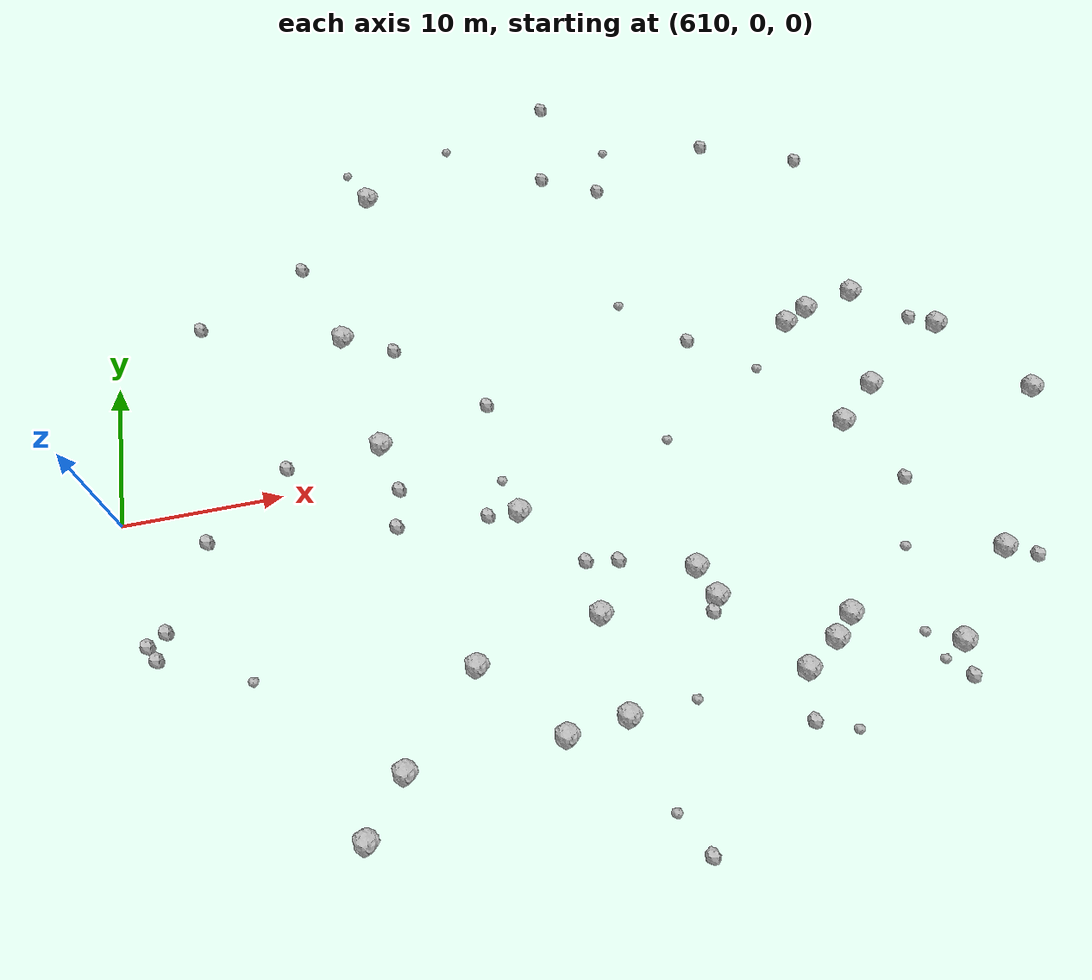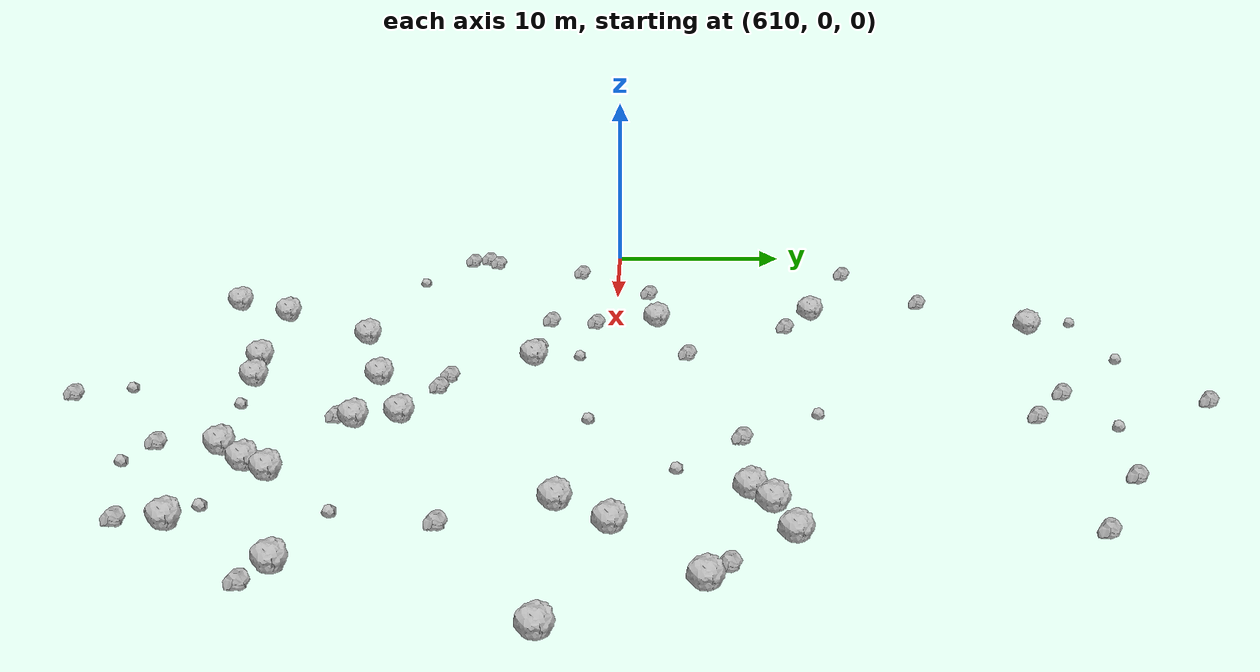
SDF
<sdf version="1.6">
 <world name="default">
  <include><uri>model://sun</uri></include>
  <model name="rock1_16_3">
   <include><uri>model://rock1</uri><pose>651.3869669971563 -15.904340754276376 0.5 0 0 0</pose></include>
  </model>
  <model name="rock1_16_4">
   <include><uri>model://rock1</uri><pose>658.9859748628533 0.2166233963697941 0.5 0 0 0</pose></include>
  </model>
  <model name="rock1_16_5">
   <include><uri>model://rock1</uri><pose>630.3030164210398 -13.322378249344503 0.5 0 0 0</pose></include>
  </model>
  <model name="rock1_16_6">
   <include><uri>model://rock1</uri><pose>659.9668831756378 7.565651626871251 0.5 0 0 0</pose></include>
  </model>
  <model name="rock1_16_7">
   <include><uri>model://rock1</uri><pose>634.4733712951677 -4.158661996774281 0.5 0 0 0</pose></include>
  </model>
  <model name="rock1_16_8">
   <include><uri>model://rock1</uri><pose>625.0108060308621 10.885701443657574 0.5 0 0 0</pose></include>
  </model>
  <model name="rock1_16_9">
   <include><uri>model://rock1</uri><pose>622.8929606862985 -21.683939861929247 0.5 0 0 0</pose></include>
  </model>
  <model name="rock1_16_10">
   <include><uri>model://rock1</uri><pose>626.5610812881131 2.240541346712213 0.5 0 0 0</pose></include>
  </model>
  <model name="rock1_16_11">
   <include><uri>model://rock1</uri><pose>656.3300939028464 -2.080367268525464 0.5 0 0 0</pose></include>
  </model>
  <model name="rock1_16_12">
   <include><uri>model://rock1</uri><pose>638.0533977929462 -11.694028753525252 0.5 0 0 0</pose></include>
  </model>
  <model name="rock1_16_13">
   <include><uri>model://rock1</uri><pose>669.3321926747362 -2.1772900887066626 0.5 0 0 0</pose></include>
  </model>
  <model name="rock1_16_14">
   <include><uri>model://rock1</uri><pose>649.2065541642347 -17.35006303423761 0.5 0 0 0</pose></include>
  </model>
  <model name="rock1_16_15">
   <include><uri>model://rock1</uri><pose>664.8841675011055 3.882026779201148 0.5 0 0 0</pose></include>
  </model>
  <model name="rock1_16_16">
   <include><uri>model://rock1</uri><pose>658.6869297960383 -17.564571363133663 0.5 0 0 0</pose></include>
  </model>
  <model name="rock1_16_17">
   <include><uri>model://rock1</uri><pose>638.3636973914404 -17.924047016844742 0.5 0 0 0</pose></include>
  </model>
  <model name="rock1_16_18">
   <include><uri>model://rock1</uri><pose>625.4231962561316 -18.4804135502133 0.5 0 0 0</pose></include>
  </model>
  <model name="rock1_16_19">
   <include><uri>model://rock1</uri><pose>656.5312086866361 6.874947884504259 0.5 0 0 0</pose></include>
  </model>
  <model name="rock1_16_20">
   <include><uri>model://rock1</uri><pose>654.8697784105173 6.02417839437507 0.5 0 0 0</pose></include>
  </model>
  <model name="rock1_16_21">
   <include><uri>model://rock1</uri><pose>628.0404525859063 22.5686499331306 0.5 0 0 0</pose></include>
  </model>
  <model name="rock1_16_22">
   <include><uri>model://rock1</uri><pose>652.6751270274144 -14.63264273213255 0.5 0 0 0</pose></include>
  </model>
  <model name="rock1_16_23">
   <include><uri>model://rock1</uri><pose>645.1432426749212 -11.984793480010016 0.5 0 0 0</pose></include>
  </model>
  <model name="rock1_16_24">
   <include><uri>model://rock1</uri><pose>663.279321588479 -12.485869990433045 0.5 0 0 0</pose></include>
  </model>
  <model name="rock1_16_25">
   <include><uri>model://rock1</uri><pose>644.4023549076787 -9.924477794676775 0.5 0 0 0</pose></include>
  </model>
  <model name="rock1_16_26">
   <include><uri>model://rock1</uri><pose>634.6653746426515 -18.319254352687434 0.5 0 0 0</pose></include>
  </model>
  <model name="rock2_16_0">
   <include><uri>model://rock2</uri><pose>659.6266102480188 19.91116613472869 0.3 0 0 0</pose></include>
  </model>
  <model name="rock2_16_1">
   <include><uri>model://rock2</uri><pose>633.7011960891709 3.822940820996017 0.3 0 0 0</pose></include>
  </model>
  <model name="rock2_16_2">
   <include><uri>model://rock2</uri><pose>615.5377289771228 13.581277313725273 0.3 0 0 0</pose></include>
  </model>
  <model name="rock2_16_3">
   <include><uri>model://rock2</uri><pose>658.8595504311221 -6.709943267219913 0.3 0 0 0</pose></include>
  </model>
  <model name="rock2_16_4">
   <include><uri>model://rock2</uri><pose>648.6496019253241 -20.308755354103386 0.3 0 0 0</pose></include>
  </model>
  <model name="rock2_16_5">
   <include><uri>model://rock2</uri><pose>611.9961097820981 -9.17215069469573 0.3 0 0 0</pose></include>
  </model>
  <model name="rock2_16_6">
   <include><uri>model://rock2</uri><pose>665.0922701370428 -13.341332684379854 0.3 0 0 0</pose></include>
  </model>
  <model name="rock2_16_7">
   <include><uri>model://rock2</uri><pose>647.8508370183184 6.020339613448243 0.3 0 0 0</pose></include>
  </model>
  <model name="rock2_16_8">
   <include><uri>model://rock2</uri><pose>653.0864075570487 22.586664130796272 0.3 0 0 0</pose></include>
  </model>
  <model name="rock2_16_9">
   <include><uri>model://rock2</uri><pose>663.2329197497988 4.825299790241573 0.3 0 0 0</pose></include>
  </model>
  <model name="rock2_16_10">
   <include><uri>model://rock2</uri><pose>637.8340616434114 -8.172368910849528 0.3 0 0 0</pose></include>
  </model>
  <model name="rock2_16_11">
   <include><uri>model://rock2</uri><pose>611.5013948717558 -8.239229655969286 0.3 0 0 0</pose></include>
  </model>
  <model name="rock2_16_12">
   <include><uri>model://rock2</uri><pose>615.2216208961092 -2.257289527555482 0.3 0 0 0</pose></include>
  </model>
  <model name="rock2_16_13">
   <include><uri>model://rock2</uri><pose>640.802368183987 21.89247570699481 0.3 0 0 0</pose></include>
  </model>
  <model name="rock2_16_14">
   <include><uri>model://rock2</uri><pose>642.0209768357341 28.70046312919628 0.3 0 0 0</pose></include>
  </model>
  <model name="rock2_16_15">
   <include><uri>model://rock2</uri><pose>644.6639598668078 -12.854336267114242 0.3 0 0 0</pose></include>
  </model>
  <model name="rock2_16_16">
   <include><uri>model://rock2</uri><pose>628.2348514316852 9.27457528195356 0.3 0 0 0</pose></include>
  </model>
  <model name="rock2_16_17">
   <include><uri>model://rock2</uri><pose>632.4757468151365 -3.9965073850698865 0.3 0 0 0</pose></include>
  </model>
  <model name="rock2_16_18">
   <include><uri>model://rock2</uri><pose>627.2818695092205 -1.0922285438820865 0.3 0 0 0</pose></include>
  </model>
  <model name="rock2_16_19">
   <include><uri>model://rock2</uri><pose>626.8077835149224 -3.5881504160798947 0.3 0 0 0</pose></include>
  </model>
  <model name="rock2_16_20">
   <include><uri>model://rock2</uri><pose>620.4545258144647 1.8221442649739856 0.3 0 0 0</pose></include>
  </model>
  <model name="rock2_16_21">
   <include><uri>model://rock2</uri><pose>612.5745734609832 -7.576265872962004 0.3 0 0 0</pose></include>
  </model>
  <model name="rock2_16_22">
   <include><uri>model://rock2</uri><pose>644.5738192941395 19.996523673924692 0.3 0 0 0</pose></include>
  </model>
  <model name="rock2_16_23">
   <include><uri>model://rock2</uri><pose>622.7399304963077 17.234764976121802 0.3 0 0 0</pose></include>
  </model>
  <model name="rock2_16_24">
   <include><uri>model://rock2</uri><pose>641.0632500789239 -26.138484464997806 0.3 0 0 0</pose></include>
  </model>
  <model name="rock2_16_25">
   <include><uri>model://rock2</uri><pose>639.8123495204414 -8.514041286712676 0.3 0 0 0</pose></include>
  </model>
  <model name="rock2_16_26">
   <include><uri>model://rock2</uri><pose>658.4686473094068 -19.648488613543446 0.3 0 0 0</pose></include>
  </model>
  <model name="rock3_16_0">
   <include><uri>model://rock3</uri><pose>634.275748855776 25.962166551174747 0.2 0 0 0</pose></include>
  </model>
  <model name="rock3_16_1">
   <include><uri>model://rock3</uri><pose>657.2348228045013 -18.409557825172225 0.2 0 0 0</pose></include>
  </model>
  <model name="rock3_16_2">
   <include><uri>model://rock3</uri><pose>645.773325677847 23.48074025753926 0.2 0 0 0</pose></include>
  </model>
  <model name="rock3_16_3">
   <include><uri>model://rock3</uri><pose>642.3854340582272 -17.76818969342822 0.2 0 0 0</pose></include>
  </model>
  <model name="rock3_16_4">
   <include><uri>model://rock3</uri><pose>617.417786256794 -11.592477073293512 0.2 0 0 0</pose></include>
  </model>
  <model name="rock3_16_5">
   <include><uri>model://rock3</uri><pose>626.7597422979157 25.14204343550489 0.2 0 0 0</pose></include>
  </model>
  <model name="rock3_16_6">
   <include><uri>model://rock3</uri><pose>644.7105905793833 -1.0561395685484563 0.2 0 0 0</pose></include>
  </model>
  <model name="rock3_16_7">
   <include><uri>model://rock3</uri><pose>633.744163907707 -1.8005038669301072 0.2 0 0 0</pose></include>
  </model>
  <model name="rock3_16_8">
   <include><uri>model://rock3</uri><pose>656.6262073381367 -16.599026050404376 0.2 0 0 0</pose></include>
  </model>
  <model name="rock3_16_9">
   <include><uri>model://rock3</uri><pose>639.7053306365543 -23.61184277973108 0.2 0 0 0</pose></include>
  </model>
  <model name="rock3_16_10">
   <include><uri>model://rock3</uri><pose>651.8695915516231 2.966037182143502 0.2 0 0 0</pose></include>
  </model>
  <model name="rock3_16_11">
   <include><uri>model://rock3</uri><pose>643.9146293957696 9.762083681493394 0.2 0 0 0</pose></include>
  </model>
  <model name="rock3_16_12">
   <include><uri>model://rock3</uri><pose>650.9824075457411 -21.27718607631637 0.2 0 0 0</pose></include>
  </model>
  <model name="rock3_16_13">
   <include><uri>model://rock3</uri><pose>657.3334534432597 -11.191290089835817 0.2 0 0 0</pose></include>
  </model>
 </world>
</sdf>
